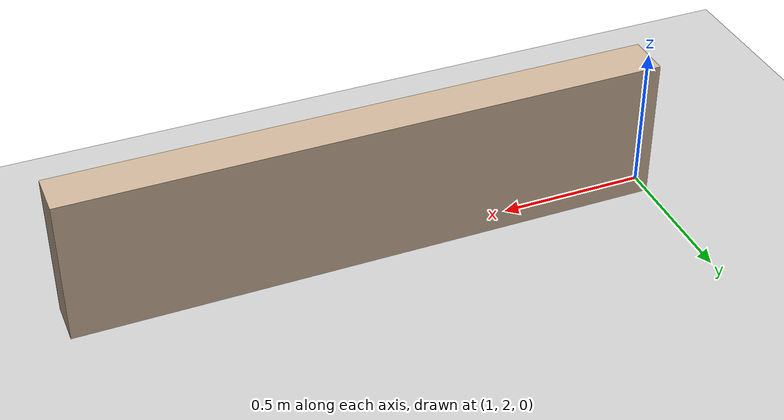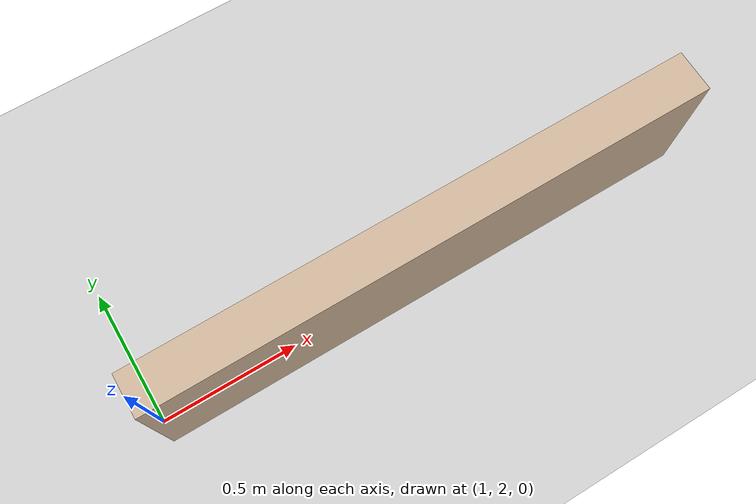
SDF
<?xml version="1.0"?>
<sdf version="1.9">
  <world name="office">

    <plugin filename="ignition-gazebo-physics-system"
            name="ignition::gazebo::systems::Physics"/>
    <plugin filename="ignition-gazebo-user-commands-system"
            name="ignition::gazebo::systems::UserCommands"/>
    <plugin filename="ignition-gazebo-scene-broadcaster-system"
            name="ignition::gazebo::systems::SceneBroadcaster"/>
    <plugin filename="ignition-gazebo-sensors-system"
            name="ignition::gazebo::systems::Sensors">
      <render_engine>ogre</render_engine>
    </plugin>

    <!-- Physics engine -->
    <physics name="default_physics" type="ode">
      <gravity>0 0 -9.8</gravity>
      <ode>
        <solver>
          <type>quick</type>
          <iters>50</iters>
          <precon_iters>0</precon_iters>
          <precon_tolerance>0</precon_tolerance>
          <max_vel>100</max_vel>
          <surface_layer>0.001</surface_layer>
        </solver>
        <constraints>
          <cfm>1e-5</cfm>
          <erp>0.2</erp>
          <contact_max_correcting_vel>100</contact_max_correcting_vel>
          <contact_surface_layer>0.001</contact_surface_layer>
        </constraints>
      </ode>
    </physics>

    <!-- Ground plane -->
    <model name="ground_plane">
      <static>true</static>
      <link name="link">
        <collision name="collision">
          <geometry>
            <plane>
              <normal>0 0 1</normal>
              <size>100 100</size>
            </plane>
          </geometry>
        </collision>
        <visual name="visual">
          <geometry>
            <plane>
              <normal>0 0 1</normal>
              <size>100 100</size>
            </plane>
          </geometry>
          <material>
            <ambient>0.8 0.8 0.8 1</ambient>
            <diffuse>0.8 0.8 0.8 1</diffuse>
            <specular>0.8 0.8 0.8 1</specular>
          </material>
        </visual>
      </link>
    </model>

    <!-- Light source -->
    <light name="sun" type="directional">
      <cast_shadows>true</cast_shadows>
      <pose>0 0 10 0 0 0</pose>
      <diffuse>0.8 0.8 0.8 1</diffuse>
      <specular>0.2 0.2 0.2 1</specular>
      <attenuation>
        <range>1000</range>
        <constant>0.9</constant>
        <linear>0.01</linear>
        <quadratic>0.001</quadratic>
      </attenuation>
      <direction>-0.5 0.1 -0.9</direction>
    </light>

    <model name="wall">
      <static>true</static>
      <pose>2 2 0.25 0 0 0</pose>
      <link name="link">
        <collision name="collision">
          <geometry>
            <box>
              <size>2.0 0.15 0.5</size>
            </box>
          </geometry>
          <surface>
            <friction>
              <ode>
                <mu>1.0</mu>
                <mu2>1.0</mu2>
              </ode>
            </friction>
          </surface>
        </collision>
        <visual name="visual">
          <geometry>
            <box>
              <size>2.0 0.15 0.5</size>
            </box>
          </geometry>
          <material>
            <ambient>0.6 0.5 0.4 1</ambient>
            <diffuse>0.8 0.7 0.6 1</diffuse>
            <specular>0.3 0.3 0.3 1</specular>
          </material>
        </visual>
      </link>
    </model>

  </world>
</sdf>
